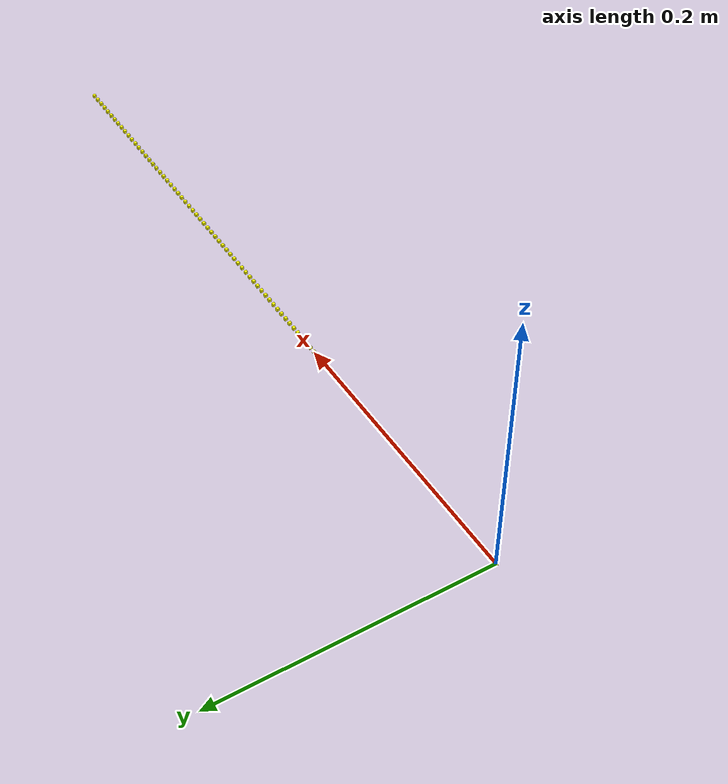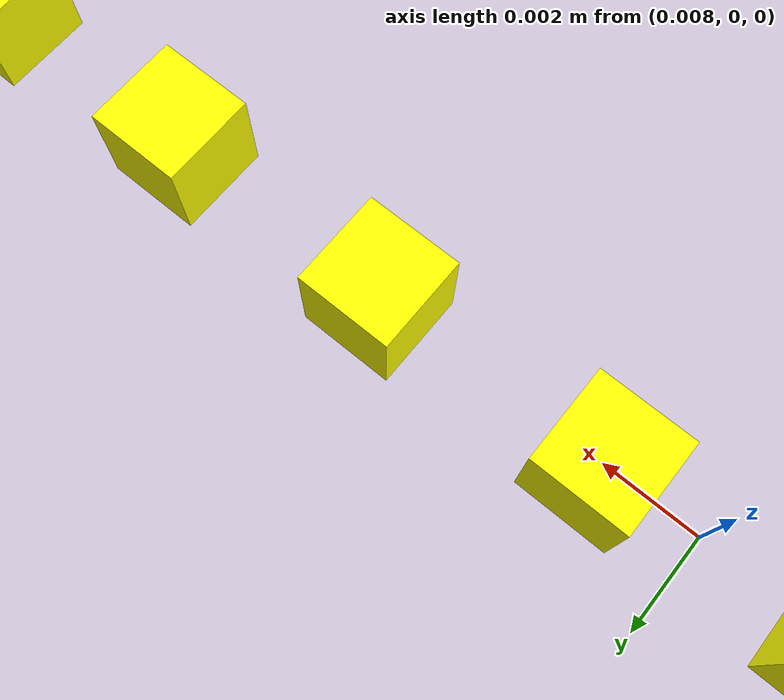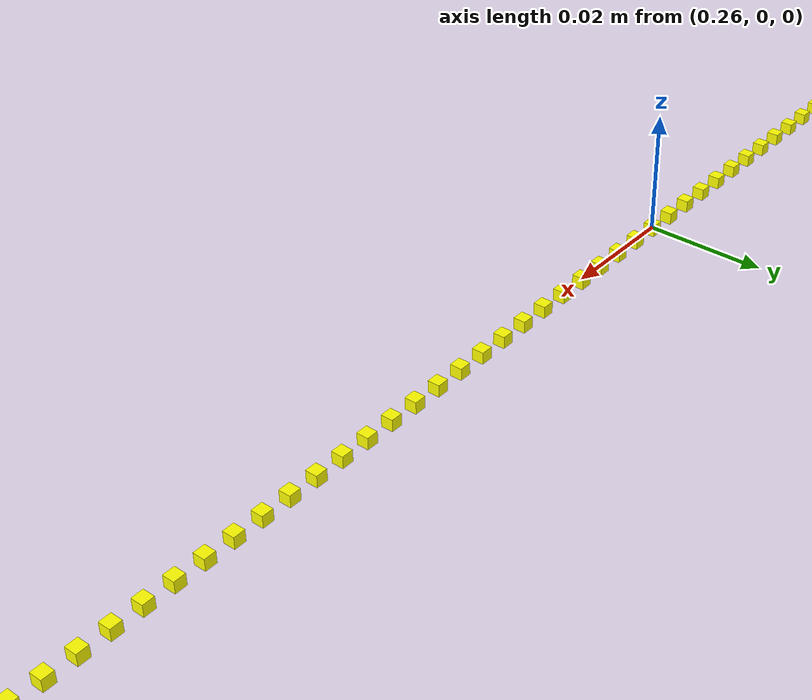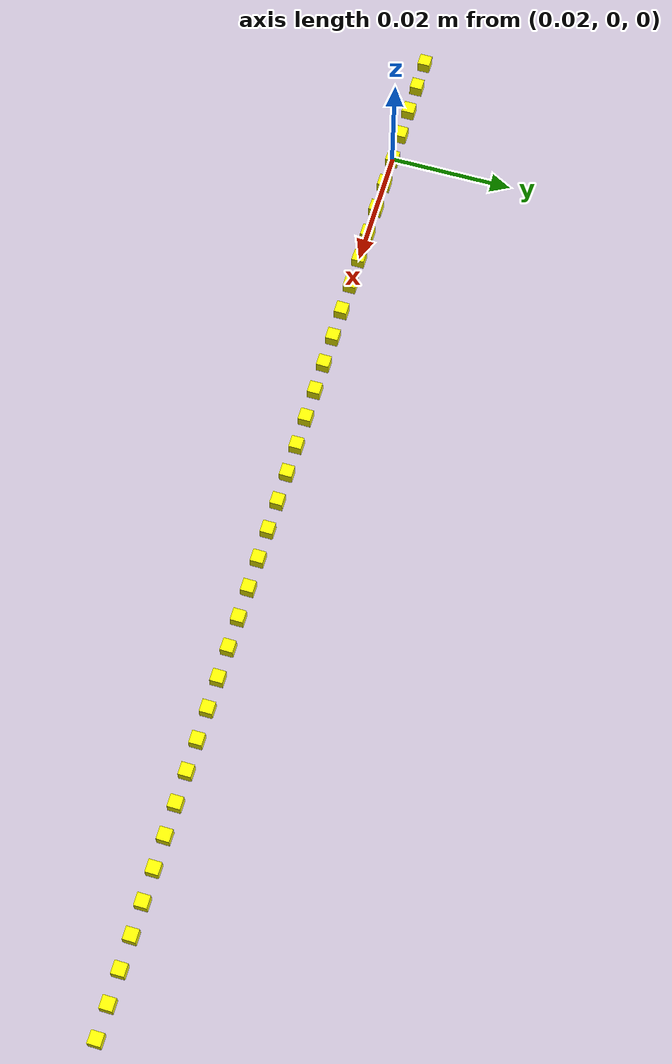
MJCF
<mujoco model="2D_UpperLimb">
  <compiler inertiafromgeom="auto" angle="radian" />
   <option timestep="0.0001" iterations="50" solver="PGS" integrator="Euler" gravity="0 0 0" collision="predefined">
     <flag energy="enable" />
   </option>
   <asset>
     <texture type="skybox" builtin="flat" rgb1="1 1 1" rgb2="1 1 1" width="100" height="100" />
      <material name="JointColor" rgba="1.0 1.0 0.0 1" />
      <material name="LimbColor" rgba="0.7 0.7 0.7 1" />
   </asset>
   <worldbody>
     <body name="cameramover" mocap="true" pos="0 0 0">
        <camera name="mycamera" pos="0.0 2.0 2.0" euler="1.5707 0 0" />
      </body>
      <body name="root" pos="0 0 0" euler="0 0 0">
        <joint ref="0" type="slide" name="sender" stiffness="1000" pos=" 0.0000 0 0" axis="1 0 0" />
         <geom type="box" name="mass1" mass="0.1" pos=" 0.0000 0 0" material="JointColor" size=" 0.0010 0.0010 0.0010" />
         <body name="node2" euler="0 0 0" pos=" 0.0050 0 0">
           <joint ref="0" type="slide" name="spring2" stiffness="1000" pos=" 0.0000 0 0" axis="1 0 0" />
            <geom type="box" name="mass2" mass="0.1" pos=" 0.0000 0 0" material="JointColor" size=" 0.0010 0.0010 0.0010" />
            <body name="node3" euler="0 0 0" pos=" 0.0050 0 0">
              <joint ref="0" type="slide" name="spring3" stiffness="1000" pos=" 0.0000 0 0" axis="1 0 0" />
               <geom type="box" name="mass3" mass="0.1" pos=" 0.0000 0 0" material="JointColor" size=" 0.0010 0.0010 0.0010" />
               <body name="node4" euler="0 0 0" pos=" 0.0050 0 0">
                 <joint ref="0" type="slide" name="spring4" stiffness="1000" pos=" 0.0000 0 0" axis="1 0 0" />
                  <geom type="box" name="mass4" mass="0.1" pos=" 0.0000 0 0" material="JointColor" size=" 0.0010 0.0010 0.0010" />
                  <body name="node5" euler="0 0 0" pos=" 0.0050 0 0">
                    <joint ref="0" type="slide" name="spring5" stiffness="1000" pos=" 0.0000 0 0" axis="1 0 0" />
                     <geom type="box" name="mass5" mass="0.1" pos=" 0.0000 0 0" material="JointColor" size=" 0.0010 0.0010 0.0010" />
                     <body name="node6" euler="0 0 0" pos=" 0.0050 0 0">
                       <joint ref="0" type="slide" name="spring6" stiffness="1000" pos=" 0.0000 0 0" axis="1 0 0" />
                        <geom type="box" name="mass6" mass="0.1" pos=" 0.0000 0 0" material="JointColor" size=" 0.0010 0.0010 0.0010" />
                        <body name="node7" euler="0 0 0" pos=" 0.0050 0 0">
                          <joint ref="0" type="slide" name="spring7" stiffness="1000" pos=" 0.0000 0 0" axis="1 0 0" />
                           <geom type="box" name="mass7" mass="0.1" pos=" 0.0000 0 0" material="JointColor" size=" 0.0010 0.0010 0.0010" />
                           <body name="node8" euler="0 0 0" pos=" 0.0050 0 0">
                             <joint ref="0" type="slide" name="spring8" stiffness="1000" pos=" 0.0000 0 0" axis="1 0 0" />
                              <geom type="box" name="mass8" mass="0.1" pos=" 0.0000 0 0" material="JointColor" size=" 0.0010 0.0010 0.0010" />
                              <body name="node9" euler="0 0 0" pos=" 0.0050 0 0">
                                <joint ref="0" type="slide" name="spring9" stiffness="1000" pos=" 0.0000 0 0" axis="1 0 0" />
                                 <geom type="box" name="mass9" mass="0.1" pos=" 0.0000 0 0" material="JointColor" size=" 0.0010 0.0010 0.0010" />
                                 <body name="node10" euler="0 0 0" pos=" 0.0050 0 0">
                                   <joint ref="0" type="slide" name="spring10" stiffness="1000" pos=" 0.0000 0 0" axis="1 0 0" />
                                    <geom type="box" name="mass10" mass="0.1" pos=" 0.0000 0 0" material="JointColor" size=" 0.0010 0.0010 0.0010" />
                                    <body name="node11" euler="0 0 0" pos=" 0.0050 0 0">
                                      <joint ref="0" type="slide" name="spring11" stiffness="1000" pos=" 0.0000 0 0" axis="1 0 0" />
                                       <geom type="box" name="mass11" mass="0.1" pos=" 0.0000 0 0" material="JointColor" size=" 0.0010 0.0010 0.0010" />
                                       <body name="node12" euler="0 0 0" pos=" 0.0050 0 0">
                                         <joint ref="0" type="slide" name="spring12" stiffness="1000" pos=" 0.0000 0 0" axis="1 0 0" />
                                          <geom type="box" name="mass12" mass="0.1" pos=" 0.0000 0 0" material="JointColor" size=" 0.0010 0.0010 0.0010" />
                                          <body name="node13" euler="0 0 0" pos=" 0.0050 0 0">
                                            <joint ref="0" type="slide" name="spring13" stiffness="1000" pos=" 0.0000 0 0" axis="1 0 0" />
                                             <geom type="box" name="mass13" mass="0.1" pos=" 0.0000 0 0" material="JointColor" size=" 0.0010 0.0010 0.0010" />
                                             <body name="node14" euler="0 0 0" pos=" 0.0050 0 0">
                                               <joint ref="0" type="slide" name="spring14" stiffness="1000" pos=" 0.0000 0 0" axis="1 0 0" />
                                                <geom type="box" name="mass14" mass="0.1" pos=" 0.0000 0 0" material="JointColor" size=" 0.0010 0.0010 0.0010" />
                                                <body name="node15" euler="0 0 0" pos=" 0.0050 0 0">
                                                  <joint ref="0" type="slide" name="spring15" stiffness="1000" pos=" 0.0000 0 0" axis="1 0 0" />
                                                   <geom type="box" name="mass15" mass="0.1" pos=" 0.0000 0 0" material="JointColor" size=" 0.0010 0.0010 0.0010" />
                                                   <body name="node16" euler="0 0 0" pos=" 0.0050 0 0">
                                                     <joint ref="0" type="slide" name="spring16" stiffness="1000" pos=" 0.0000 0 0" axis="1 0 0" />
                                                      <geom type="box" name="mass16" mass="0.1" pos=" 0.0000 0 0" material="JointColor" size=" 0.0010 0.0010 0.0010" />
                                                      <body name="node17" euler="0 0 0" pos=" 0.0050 0 0">
                                                        <joint ref="0" type="slide" name="spring17" stiffness="1000" pos=" 0.0000 0 0" axis="1 0 0" />
                                                         <geom type="box" name="mass17" mass="0.1" pos=" 0.0000 0 0" material="JointColor" size=" 0.0010 0.0010 0.0010" />
                                                         <body name="node18" euler="0 0 0" pos=" 0.0050 0 0">
                                                           <joint ref="0" type="slide" name="spring18" stiffness="1000" pos=" 0.0000 0 0" axis="1 0 0" />
                                                            <geom type="box" name="mass18" mass="0.1" pos=" 0.0000 0 0" material="JointColor" size=" 0.0010 0.0010 0.0010" />
                                                            <body name="node19" euler="0 0 0" pos=" 0.0050 0 0">
                                                              <joint ref="0" type="slide" name="spring19" stiffness="1000" pos=" 0.0000 0 0" axis="1 0 0" />
                                                               <geom type="box" name="mass19" mass="0.1" pos=" 0.0000 0 0" material="JointColor" size=" 0.0010 0.0010 0.0010" />
                                                               <body name="node20" euler="0 0 0" pos=" 0.0050 0 0">
                                                                 <joint ref="0" type="slide" name="spring20" stiffness="1000" pos=" 0.0000 0 0" axis="1 0 0" />
                                                                  <geom type="box" name="mass20" mass="0.1" pos=" 0.0000 0 0" material="JointColor" size=" 0.0010 0.0010 0.0010" />
                                                                  <body name="node21" euler="0 0 0" pos=" 0.0050 0 0">
                                                                    <joint ref="0" type="slide" name="spring21" stiffness="1000" pos=" 0.0000 0 0" axis="1 0 0" />
                                                                     <geom type="box" name="mass21" mass="0.1" pos=" 0.0000 0 0" material="JointColor" size=" 0.0010 0.0010 0.0010" />
                                                                     <body name="node22" euler="0 0 0" pos=" 0.0050 0 0">
                                                                       <joint ref="0" type="slide" name="spring22" stiffness="1000" pos=" 0.0000 0 0" axis="1 0 0" />
                                                                        <geom type="box" name="mass22" mass="0.1" pos=" 0.0000 0 0" material="JointColor" size=" 0.0010 0.0010 0.0010" />
                                                                        <body name="node23" euler="0 0 0" pos=" 0.0050 0 0">
                                                                          <joint ref="0" type="slide" name="spring23" stiffness="1000" pos=" 0.0000 0 0" axis="1 0 0" />
                                                                           <geom type="box" name="mass23" mass="0.1" pos=" 0.0000 0 0" material="JointColor" size=" 0.0010 0.0010 0.0010" />
                                                                           <body name="node24" euler="0 0 0" pos=" 0.0050 0 0">
                                                                             <joint ref="0" type="slide" name="spring24" stiffness="1000" pos=" 0.0000 0 0" axis="1 0 0" />
                                                                              <geom type="box" name="mass24" mass="0.1" pos=" 0.0000 0 0" material="JointColor" size=" 0.0010 0.0010 0.0010" />
                                                                              <body name="node25" euler="0 0 0" pos=" 0.0050 0 0">
                                                                                <joint ref="0" type="slide" name="spring25" stiffness="1000" pos=" 0.0000 0 0" axis="1 0 0" />
                                                                                 <geom type="box" name="mass25" mass="0.1" pos=" 0.0000 0 0" material="JointColor" size=" 0.0010 0.0010 0.0010" />
                                                                                 <body name="node26" euler="0 0 0" pos=" 0.0050 0 0">
                                                                                   <joint ref="0" type="slide" name="spring26" stiffness="1000" pos=" 0.0000 0 0" axis="1 0 0" />
                                                                                    <geom type="box" name="mass26" mass="0.1" pos=" 0.0000 0 0" material="JointColor" size=" 0.0010 0.0010 0.0010" />
                                                                                    <body name="node27" euler="0 0 0" pos=" 0.0050 0 0">
                                                                                      <joint ref="0" type="slide" name="spring27" stiffness="1000" pos=" 0.0000 0 0" axis="1 0 0" />
                                                                                       <geom type="box" name="mass27" mass="0.1" pos=" 0.0000 0 0" material="JointColor" size=" 0.0010 0.0010 0.0010" />
                                                                                       <body name="node28" euler="0 0 0" pos=" 0.0050 0 0">
                                                                                         <joint ref="0" type="slide" name="spring28" stiffness="1000" pos=" 0.0000 0 0" axis="1 0 0" />
                                                                                          <geom type="box" name="mass28" mass="0.1" pos=" 0.0000 0 0" material="JointColor" size=" 0.0010 0.0010 0.0010" />
                                                                                          <body name="node29" euler="0 0 0" pos=" 0.0050 0 0">
                                                                                            <joint ref="0" type="slide" name="spring29" stiffness="1000" pos=" 0.0000 0 0" axis="1 0 0" />
                                                                                             <geom type="box" name="mass29" mass="0.1" pos=" 0.0000 0 0" material="JointColor" size=" 0.0010 0.0010 0.0010" />
                                                                                             <body name="node30" euler="0 0 0" pos=" 0.0050 0 0">
                                                                                               <joint ref="0" type="slide" name="spring30" stiffness="1000" pos=" 0.0000 0 0" axis="1 0 0" />
                                                                                                <geom type="box" name="mass30" mass="0.1" pos=" 0.0000 0 0" material="JointColor" size=" 0.0010 0.0010 0.0010" />
                                                                                                <body name="node31" euler="0 0 0" pos=" 0.0050 0 0">
                                                                                                  <joint ref="0" type="slide" name="spring31" stiffness="1000" pos=" 0.0000 0 0" axis="1 0 0" />
                                                                                                   <geom type="box" name="mass31" mass="0.1" pos=" 0.0000 0 0" material="JointColor" size=" 0.0010 0.0010 0.0010" />
                                                                                                   <body name="node32" euler="0 0 0" pos=" 0.0050 0 0">
                                                                                                     <joint ref="0" type="slide" name="spring32" stiffness="1000" pos=" 0.0000 0 0" axis="1 0 0" />
                                                                                                      <geom type="box" name="mass32" mass="0.1" pos=" 0.0000 0 0" material="JointColor" size=" 0.0010 0.0010 0.0010" />
                                                                                                      <body name="node33" euler="0 0 0" pos=" 0.0050 0 0">
                                                                                                        <joint ref="0" type="slide" name="spring33" stiffness="1000" pos=" 0.0000 0 0" axis="1 0 0" />
                                                                                                         <geom type="box" name="mass33" mass="0.1" pos=" 0.0000 0 0" material="JointColor" size=" 0.0010 0.0010 0.0010" />
                                                                                                         <body name="node34" euler="0 0 0" pos=" 0.0050 0 0">
                                                                                                           <joint ref="0" type="slide" name="spring34" stiffness="1000" pos=" 0.0000 0 0" axis="1 0 0" />
                                                                                                            <geom type="box" name="mass34" mass="0.1" pos=" 0.0000 0 0" material="JointColor" size=" 0.0010 0.0010 0.0010" />
                                                                                                            <body name="node35" euler="0 0 0" pos=" 0.0050 0 0">
                                                                                                              <joint ref="0" type="slide" name="spring35" stiffness="1000" pos=" 0.0000 0 0" axis="1 0 0" />
                                                                                                               <geom type="box" name="mass35" mass="0.1" pos=" 0.0000 0 0" material="JointColor" size=" 0.0010 0.0010 0.0010" />
                                                                                                               <body name="node36" euler="0 0 0" pos=" 0.0050 0 0">
                                                                                                                 <joint ref="0" type="slide" name="spring36" stiffness="1000" pos=" 0.0000 0 0" axis="1 0 0" />
                                                                                                                  <geom type="box" name="mass36" mass="0.1" pos=" 0.0000 0 0" material="JointColor" size=" 0.0010 0.0010 0.0010" />
                                                                                                                  <body name="node37" euler="0 0 0" pos=" 0.0050 0 0">
                                                                                                                    <joint ref="0" type="slide" name="spring37" stiffness="1000" pos=" 0.0000 0 0" axis="1 0 0" />
                                                                                                                     <geom type="box" name="mass37" mass="0.1" pos=" 0.0000 0 0" material="JointColor" size=" 0.0010 0.0010 0.0010" />
                                                                                                                     <body name="node38" euler="0 0 0" pos=" 0.0050 0 0">
                                                                                                                       <joint ref="0" type="slide" name="spring38" stiffness="1000" pos=" 0.0000 0 0" axis="1 0 0" />
                                                                                                                        <geom type="box" name="mass38" mass="0.1" pos=" 0.0000 0 0" material="JointColor" size=" 0.0010 0.0010 0.0010" />
                                                                                                                        <body name="node39" euler="0 0 0" pos=" 0.0050 0 0">
                                                                                                                          <joint ref="0" type="slide" name="spring39" stiffness="1000" pos=" 0.0000 0 0" axis="1 0 0" />
                                                                                                                           <geom type="box" name="mass39" mass="0.1" pos=" 0.0000 0 0" material="JointColor" size=" 0.0010 0.0010 0.0010" />
                                                                                                                           <body name="node40" euler="0 0 0" pos=" 0.0050 0 0">
                                                                                                                             <joint ref="0" type="slide" name="spring40" stiffness="1000" pos=" 0.0000 0 0" axis="1 0 0" />
                                                                                                                              <geom type="box" name="mass40" mass="0.1" pos=" 0.0000 0 0" material="JointColor" size=" 0.0010 0.0010 0.0010" />
                                                                                                                              <body name="node41" euler="0 0 0" pos=" 0.0050 0 0">
                                                                                                                                <joint ref="0" type="slide" name="spring41" stiffness="1000" pos=" 0.0000 0 0" axis="1 0 0" />
                                                                                                                                 <geom type="box" name="mass41" mass="0.1" pos=" 0.0000 0 0" material="JointColor" size=" 0.0010 0.0010 0.0010" />
                                                                                                                                 <body name="node42" euler="0 0 0" pos=" 0.0050 0 0">
                                                                                                                                   <joint ref="0" type="slide" name="spring42" stiffness="1000" pos=" 0.0000 0 0" axis="1 0 0" />
                                                                                                                                    <geom type="box" name="mass42" mass="0.1" pos=" 0.0000 0 0" material="JointColor" size=" 0.0010 0.0010 0.0010" />
                                                                                                                                    <body name="node43" euler="0 0 0" pos=" 0.0050 0 0">
                                                                                                                                      <joint ref="0" type="slide" name="spring43" stiffness="1000" pos=" 0.0000 0 0" axis="1 0 0" />
                                                                                                                                       <geom type="box" name="mass43" mass="0.1" pos=" 0.0000 0 0" material="JointColor" size=" 0.0010 0.0010 0.0010" />
                                                                                                                                       <body name="node44" euler="0 0 0" pos=" 0.0050 0 0">
                                                                                                                                         <joint ref="0" type="slide" name="spring44" stiffness="1000" pos=" 0.0000 0 0" axis="1 0 0" />
                                                                                                                                          <geom type="box" name="mass44" mass="0.1" pos=" 0.0000 0 0" material="JointColor" size=" 0.0010 0.0010 0.0010" />
                                                                                                                                          <body name="node45" euler="0 0 0" pos=" 0.0050 0 0">
                                                                                                                                            <joint ref="0" type="slide" name="spring45" stiffness="1000" pos=" 0.0000 0 0" axis="1 0 0" />
                                                                                                                                             <geom type="box" name="mass45" mass="0.1" pos=" 0.0000 0 0" material="JointColor" size=" 0.0010 0.0010 0.0010" />
                                                                                                                                             <body name="node46" euler="0 0 0" pos=" 0.0050 0 0">
                                                                                                                                               <joint ref="0" type="slide" name="spring46" stiffness="1000" pos=" 0.0000 0 0" axis="1 0 0" />
                                                                                                                                                <geom type="box" name="mass46" mass="0.1" pos=" 0.0000 0 0" material="JointColor" size=" 0.0010 0.0010 0.0010" />
                                                                                                                                                <body name="node47" euler="0 0 0" pos=" 0.0050 0 0">
                                                                                                                                                  <joint ref="0" type="slide" name="spring47" stiffness="1000" pos=" 0.0000 0 0" axis="1 0 0" />
                                                                                                                                                   <geom type="box" name="mass47" mass="0.1" pos=" 0.0000 0 0" material="JointColor" size=" 0.0010 0.0010 0.0010" />
                                                                                                                                                   <body name="node48" euler="0 0 0" pos=" 0.0050 0 0">
                                                                                                                                                     <joint ref="0" type="slide" name="spring48" stiffness="1000" pos=" 0.0000 0 0" axis="1 0 0" />
                                                                                                                                                      <geom type="box" name="mass48" mass="0.1" pos=" 0.0000 0 0" material="JointColor" size=" 0.0010 0.0010 0.0010" />
                                                                                                                                                      <body name="node49" euler="0 0 0" pos=" 0.0050 0 0">
                                                                                                                                                        <joint ref="0" type="slide" name="spring49" stiffness="1000" pos=" 0.0000 0 0" axis="1 0 0" />
                                                                                                                                                         <geom type="box" name="mass49" mass="0.1" pos=" 0.0000 0 0" material="JointColor" size=" 0.0010 0.0010 0.0010" />
                                                                                                                                                         <body name="node50" euler="0 0 0" pos=" 0.0050 0 0">
                                                                                                                                                           <joint ref="0" type="slide" name="spring50" stiffness="1000" pos=" 0.0000 0 0" axis="1 0 0" />
                                                                                                                                                            <geom type="box" name="mass50" mass="0.1" pos=" 0.0000 0 0" material="JointColor" size=" 0.0010 0.0010 0.0010" />
                                                                                                                                                            <body name="node51" euler="0 0 0" pos=" 0.0050 0 0">
                                                                                                                                                              <joint ref="0" type="slide" name="spring51" stiffness="1000" pos=" 0.0000 0 0" axis="1 0 0" />
                                                                                                                                                               <geom type="box" name="mass51" mass="0.1" pos=" 0.0000 0 0" material="JointColor" size=" 0.0010 0.0010 0.0010" />
                                                                                                                                                               <body name="node52" euler="0 0 0" pos=" 0.0050 0 0">
                                                                                                                                                                 <joint ref="0" type="slide" name="spring52" stiffness="1000" pos=" 0.0000 0 0" axis="1 0 0" />
                                                                                                                                                                  <geom type="box" name="mass52" mass="0.1" pos=" 0.0000 0 0" material="JointColor" size=" 0.0010 0.0010 0.0010" />
                                                                                                                                                                  <body name="node53" euler="0 0 0" pos=" 0.0050 0 0">
                                                                                                                                                                    <joint ref="0" type="slide" name="spring53" stiffness="1000" pos=" 0.0000 0 0" axis="1 0 0" />
                                                                                                                                                                     <geom type="box" name="mass53" mass="0.1" pos=" 0.0000 0 0" material="JointColor" size=" 0.0010 0.0010 0.0010" />
                                                                                                                                                                     <body name="node54" euler="0 0 0" pos=" 0.0050 0 0">
                                                                                                                                                                       <joint ref="0" type="slide" name="spring54" stiffness="1000" pos=" 0.0000 0 0" axis="1 0 0" />
                                                                                                                                                                        <geom type="box" name="mass54" mass="0.1" pos=" 0.0000 0 0" material="JointColor" size=" 0.0010 0.0010 0.0010" />
                                                                                                                                                                        <body name="node55" euler="0 0 0" pos=" 0.0050 0 0">
                                                                                                                                                                          <joint ref="0" type="slide" name="spring55" stiffness="1000" pos=" 0.0000 0 0" axis="1 0 0" />
                                                                                                                                                                           <geom type="box" name="mass55" mass="0.1" pos=" 0.0000 0 0" material="JointColor" size=" 0.0010 0.0010 0.0010" />
                                                                                                                                                                           <body name="node56" euler="0 0 0" pos=" 0.0050 0 0">
                                                                                                                                                                             <joint ref="0" type="slide" name="spring56" stiffness="1000" pos=" 0.0000 0 0" axis="1 0 0" />
                                                                                                                                                                              <geom type="box" name="mass56" mass="0.1" pos=" 0.0000 0 0" material="JointColor" size=" 0.0010 0.0010 0.0010" />
                                                                                                                                                                              <body name="node57" euler="0 0 0" pos=" 0.0050 0 0">
                                                                                                                                                                                <joint ref="0" type="slide" name="spring57" stiffness="1000" pos=" 0.0000 0 0" axis="1 0 0" />
                                                                                                                                                                                 <geom type="box" name="mass57" mass="0.1" pos=" 0.0000 0 0" material="JointColor" size=" 0.0010 0.0010 0.0010" />
                                                                                                                                                                                 <body name="node58" euler="0 0 0" pos=" 0.0050 0 0">
                                                                                                                                                                                   <joint ref="0" type="slide" name="spring58" stiffness="1000" pos=" 0.0000 0 0" axis="1 0 0" />
                                                                                                                                                                                    <geom type="box" name="mass58" mass="0.1" pos=" 0.0000 0 0" material="JointColor" size=" 0.0010 0.0010 0.0010" />
                                                                                                                                                                                    <body name="node59" euler="0 0 0" pos=" 0.0050 0 0">
                                                                                                                                                                                      <joint ref="0" type="slide" name="spring59" stiffness="1000" pos=" 0.0000 0 0" axis="1 0 0" />
                                                                                                                                                                                       <geom type="box" name="mass59" mass="0.1" pos=" 0.0000 0 0" material="JointColor" size=" 0.0010 0.0010 0.0010" />
                                                                                                                                                                                       <body name="node60" euler="0 0 0" pos=" 0.0050 0 0">
                                                                                                                                                                                         <joint ref="0" type="slide" name="spring60" stiffness="1000" pos=" 0.0000 0 0" axis="1 0 0" />
                                                                                                                                                                                          <geom type="box" name="mass60" mass="0.1" pos=" 0.0000 0 0" material="JointColor" size=" 0.0010 0.0010 0.0010" />
                                                                                                                                                                                          <body name="node61" euler="0 0 0" pos=" 0.0050 0 0">
                                                                                                                                                                                            <joint ref="0" type="slide" name="spring61" stiffness="1000" pos=" 0.0000 0 0" axis="1 0 0" />
                                                                                                                                                                                             <geom type="box" name="mass61" mass="0.1" pos=" 0.0000 0 0" material="JointColor" size=" 0.0010 0.0010 0.0010" />
                                                                                                                                                                                             <body name="node62" euler="0 0 0" pos=" 0.0050 0 0">
                                                                                                                                                                                               <joint ref="0" type="slide" name="spring62" stiffness="1000" pos=" 0.0000 0 0" axis="1 0 0" />
                                                                                                                                                                                                <geom type="box" name="mass62" mass="0.1" pos=" 0.0000 0 0" material="JointColor" size=" 0.0010 0.0010 0.0010" />
                                                                                                                                                                                                <body name="node63" euler="0 0 0" pos=" 0.0050 0 0">
                                                                                                                                                                                                  <joint ref="0" type="slide" name="spring63" stiffness="1000" pos=" 0.0000 0 0" axis="1 0 0" />
                                                                                                                                                                                                   <geom type="box" name="mass63" mass="0.1" pos=" 0.0000 0 0" material="JointColor" size=" 0.0010 0.0010 0.0010" />
                                                                                                                                                                                                   <body name="node64" euler="0 0 0" pos=" 0.0050 0 0">
                                                                                                                                                                                                     <joint ref="0" type="slide" name="spring64" stiffness="1000" pos=" 0.0000 0 0" axis="1 0 0" />
                                                                                                                                                                                                      <geom type="box" name="mass64" mass="0.1" pos=" 0.0000 0 0" material="JointColor" size=" 0.0010 0.0010 0.0010" />
                                                                                                                                                                                                      <body name="node65" euler="0 0 0" pos=" 0.0050 0 0">
                                                                                                                                                                                                        <joint ref="0" type="slide" name="spring65" stiffness="1000" pos=" 0.0000 0 0" axis="1 0 0" />
                                                                                                                                                                                                         <geom type="box" name="mass65" mass="0.1" pos=" 0.0000 0 0" material="JointColor" size=" 0.0010 0.0010 0.0010" />
                                                                                                                                                                                                         <body name="node66" euler="0 0 0" pos=" 0.0050 0 0">
                                                                                                                                                                                                           <joint ref="0" type="slide" name="spring66" stiffness="1000" pos=" 0.0000 0 0" axis="1 0 0" />
                                                                                                                                                                                                            <geom type="box" name="mass66" mass="0.1" pos=" 0.0000 0 0" material="JointColor" size=" 0.0010 0.0010 0.0010" />
                                                                                                                                                                                                            <body name="node67" euler="0 0 0" pos=" 0.0050 0 0">
                                                                                                                                                                                                              <joint ref="0" type="slide" name="spring67" stiffness="1000" pos=" 0.0000 0 0" axis="1 0 0" />
                                                                                                                                                                                                               <geom type="box" name="mass67" mass="0.1" pos=" 0.0000 0 0" material="JointColor" size=" 0.0010 0.0010 0.0010" />
                                                                                                                                                                                                               <body name="node68" euler="0 0 0" pos=" 0.0050 0 0">
                                                                                                                                                                                                                 <joint ref="0" type="slide" name="spring68" stiffness="1000" pos=" 0.0000 0 0" axis="1 0 0" />
                                                                                                                                                                                                                  <geom type="box" name="mass68" mass="0.1" pos=" 0.0000 0 0" material="JointColor" size=" 0.0010 0.0010 0.0010" />
                                                                                                                                                                                                                  <body name="node69" euler="0 0 0" pos=" 0.0050 0 0">
                                                                                                                                                                                                                    <joint ref="0" type="slide" name="spring69" stiffness="1000" pos=" 0.0000 0 0" axis="1 0 0" />
                                                                                                                                                                                                                     <geom type="box" name="mass69" mass="0.1" pos=" 0.0000 0 0" material="JointColor" size=" 0.0010 0.0010 0.0010" />
                                                                                                                                                                                                                     <body name="node70" euler="0 0 0" pos=" 0.0050 0 0">
                                                                                                                                                                                                                       <joint ref="0" type="slide" name="spring70" stiffness="1000" pos=" 0.0000 0 0" axis="1 0 0" />
                                                                                                                                                                                                                        <geom type="box" name="mass70" mass="0.1" pos=" 0.0000 0 0" material="JointColor" size=" 0.0010 0.0010 0.0010" />
                                                                                                                                                                                                                        <body name="node71" euler="0 0 0" pos=" 0.0050 0 0">
                                                                                                                                                                                                                          <joint ref="0" type="slide" name="spring71" stiffness="1000" pos=" 0.0000 0 0" axis="1 0 0" />
                                                                                                                                                                                                                           <geom type="box" name="mass71" mass="0.1" pos=" 0.0000 0 0" material="JointColor" size=" 0.0010 0.0010 0.0010" />
                                                                                                                                                                                                                           <body name="node72" euler="0 0 0" pos=" 0.0050 0 0">
                                                                                                                                                                                                                             <joint ref="0" type="slide" name="spring72" stiffness="1000" pos=" 0.0000 0 0" axis="1 0 0" />
                                                                                                                                                                                                                              <geom type="box" name="mass72" mass="0.1" pos=" 0.0000 0 0" material="JointColor" size=" 0.0010 0.0010 0.0010" />
                                                                                                                                                                                                                              <body name="node73" euler="0 0 0" pos=" 0.0050 0 0">
                                                                                                                                                                                                                                <joint ref="0" type="slide" name="spring73" stiffness="1000" pos=" 0.0000 0 0" axis="1 0 0" />
                                                                                                                                                                                                                                 <geom type="box" name="mass73" mass="0.1" pos=" 0.0000 0 0" material="JointColor" size=" 0.0010 0.0010 0.0010" />
                                                                                                                                                                                                                                 <body name="node74" euler="0 0 0" pos=" 0.0050 0 0">
                                                                                                                                                                                                                                   <joint ref="0" type="slide" name="spring74" stiffness="1000" pos=" 0.0000 0 0" axis="1 0 0" />
                                                                                                                                                                                                                                    <geom type="box" name="mass74" mass="0.1" pos=" 0.0000 0 0" material="JointColor" size=" 0.0010 0.0010 0.0010" />
                                                                                                                                                                                                                                    <body name="node75" euler="0 0 0" pos=" 0.0050 0 0">
                                                                                                                                                                                                                                      <joint ref="0" type="slide" name="spring75" stiffness="1000" pos=" 0.0000 0 0" axis="1 0 0" />
                                                                                                                                                                                                                                       <geom type="box" name="mass75" mass="0.1" pos=" 0.0000 0 0" material="JointColor" size=" 0.0010 0.0010 0.0010" />
                                                                                                                                                                                                                                       <body name="node76" euler="0 0 0" pos=" 0.0050 0 0">
                                                                                                                                                                                                                                         <joint ref="0" type="slide" name="spring76" stiffness="1000" pos=" 0.0000 0 0" axis="1 0 0" />
                                                                                                                                                                                                                                          <geom type="box" name="mass76" mass="0.1" pos=" 0.0000 0 0" material="JointColor" size=" 0.0010 0.0010 0.0010" />
                                                                                                                                                                                                                                          <body name="node77" euler="0 0 0" pos=" 0.0050 0 0">
                                                                                                                                                                                                                                            <joint ref="0" type="slide" name="spring77" stiffness="1000" pos=" 0.0000 0 0" axis="1 0 0" />
                                                                                                                                                                                                                                             <geom type="box" name="mass77" mass="0.1" pos=" 0.0000 0 0" material="JointColor" size=" 0.0010 0.0010 0.0010" />
                                                                                                                                                                                                                                             <body name="node78" euler="0 0 0" pos=" 0.0050 0 0">
                                                                                                                                                                                                                                               <joint ref="0" type="slide" name="spring78" stiffness="1000" pos=" 0.0000 0 0" axis="1 0 0" />
                                                                                                                                                                                                                                                <geom type="box" name="mass78" mass="0.1" pos=" 0.0000 0 0" material="JointColor" size=" 0.0010 0.0010 0.0010" />
                                                                                                                                                                                                                                                <body name="node79" euler="0 0 0" pos=" 0.0050 0 0">
                                                                                                                                                                                                                                                  <joint ref="0" type="slide" name="spring79" stiffness="1000" pos=" 0.0000 0 0" axis="1 0 0" />
                                                                                                                                                                                                                                                   <geom type="box" name="mass79" mass="0.1" pos=" 0.0000 0 0" material="JointColor" size=" 0.0010 0.0010 0.0010" />
                                                                                                                                                                                                                                                   <body name="node80" euler="0 0 0" pos=" 0.0050 0 0">
                                                                                                                                                                                                                                                     <joint ref="0" type="slide" name="spring80" stiffness="1000" pos=" 0.0000 0 0" axis="1 0 0" />
                                                                                                                                                                                                                                                      <geom type="box" name="mass80" mass="0.1" pos=" 0.0000 0 0" material="JointColor" size=" 0.0010 0.0010 0.0010" />
                                                                                                                                                                                                                                                      <body name="node81" euler="0 0 0" pos=" 0.0050 0 0">
                                                                                                                                                                                                                                                        <joint ref="0" type="slide" name="spring81" stiffness="1000" pos=" 0.0000 0 0" axis="1 0 0" />
                                                                                                                                                                                                                                                         <geom type="box" name="mass81" mass="0.1" pos=" 0.0000 0 0" material="JointColor" size=" 0.0010 0.0010 0.0010" />
                                                                                                                                                                                                                                                         <body name="node82" euler="0 0 0" pos=" 0.0050 0 0">
                                                                                                                                                                                                                                                           <joint ref="0" type="slide" name="spring82" stiffness="1000" pos=" 0.0000 0 0" axis="1 0 0" />
                                                                                                                                                                                                                                                            <geom type="box" name="mass82" mass="0.1" pos=" 0.0000 0 0" material="JointColor" size=" 0.0010 0.0010 0.0010" />
                                                                                                                                                                                                                                                            <body name="node83" euler="0 0 0" pos=" 0.0050 0 0">
                                                                                                                                                                                                                                                              <joint ref="0" type="slide" name="spring83" stiffness="1000" pos=" 0.0000 0 0" axis="1 0 0" />
                                                                                                                                                                                                                                                               <geom type="box" name="mass83" mass="0.1" pos=" 0.0000 0 0" material="JointColor" size=" 0.0010 0.0010 0.0010" />
                                                                                                                                                                                                                                                               <body name="node84" euler="0 0 0" pos=" 0.0050 0 0">
                                                                                                                                                                                                                                                                 <joint ref="0" type="slide" name="spring84" stiffness="1000" pos=" 0.0000 0 0" axis="1 0 0" />
                                                                                                                                                                                                                                                                  <geom type="box" name="mass84" mass="0.1" pos=" 0.0000 0 0" material="JointColor" size=" 0.0010 0.0010 0.0010" />
                                                                                                                                                                                                                                                                  <body name="node85" euler="0 0 0" pos=" 0.0050 0 0">
                                                                                                                                                                                                                                                                    <joint ref="0" type="slide" name="spring85" stiffness="1000" pos=" 0.0000 0 0" axis="1 0 0" />
                                                                                                                                                                                                                                                                     <geom type="box" name="mass85" mass="0.1" pos=" 0.0000 0 0" material="JointColor" size=" 0.0010 0.0010 0.0010" />
                                                                                                                                                                                                                                                                     <body name="node86" euler="0 0 0" pos=" 0.0050 0 0">
                                                                                                                                                                                                                                                                       <joint ref="0" type="slide" name="spring86" stiffness="1000" pos=" 0.0000 0 0" axis="1 0 0" />
                                                                                                                                                                                                                                                                        <geom type="box" name="mass86" mass="0.1" pos=" 0.0000 0 0" material="JointColor" size=" 0.0010 0.0010 0.0010" />
                                                                                                                                                                                                                                                                        <body name="node87" euler="0 0 0" pos=" 0.0050 0 0">
                                                                                                                                                                                                                                                                          <joint ref="0" type="slide" name="spring87" stiffness="1000" pos=" 0.0000 0 0" axis="1 0 0" />
                                                                                                                                                                                                                                                                           <geom type="box" name="mass87" mass="0.1" pos=" 0.0000 0 0" material="JointColor" size=" 0.0010 0.0010 0.0010" />
                                                                                                                                                                                                                                                                           <body name="node88" euler="0 0 0" pos=" 0.0050 0 0">
                                                                                                                                                                                                                                                                             <joint ref="0" type="slide" name="spring88" stiffness="1000" pos=" 0.0000 0 0" axis="1 0 0" />
                                                                                                                                                                                                                                                                              <geom type="box" name="mass88" mass="0.1" pos=" 0.0000 0 0" material="JointColor" size=" 0.0010 0.0010 0.0010" />
                                                                                                                                                                                                                                                                              <body name="node89" euler="0 0 0" pos=" 0.0050 0 0">
                                                                                                                                                                                                                                                                                <joint ref="0" type="slide" name="spring89" stiffness="1000" pos=" 0.0000 0 0" axis="1 0 0" />
                                                                                                                                                                                                                                                                                 <geom type="box" name="mass89" mass="0.1" pos=" 0.0000 0 0" material="JointColor" size=" 0.0010 0.0010 0.0010" />
                                                                                                                                                                                                                                                                                 <body name="node90" euler="0 0 0" pos=" 0.0050 0 0">
                                                                                                                                                                                                                                                                                   <joint ref="0" type="slide" name="spring90" stiffness="1000" pos=" 0.0000 0 0" axis="1 0 0" />
                                                                                                                                                                                                                                                                                    <geom type="box" name="mass90" mass="0.1" pos=" 0.0000 0 0" material="JointColor" size=" 0.0010 0.0010 0.0010" />
                                                                                                                                                                                                                                                                                    <body name="node91" euler="0 0 0" pos=" 0.0050 0 0">
                                                                                                                                                                                                                                                                                      <joint ref="0" type="slide" name="spring91" stiffness="1000" pos=" 0.0000 0 0" axis="1 0 0" />
                                                                                                                                                                                                                                                                                       <geom type="box" name="mass91" mass="0.1" pos=" 0.0000 0 0" material="JointColor" size=" 0.0010 0.0010 0.0010" />
                                                                                                                                                                                                                                                                                       <body name="node92" euler="0 0 0" pos=" 0.0050 0 0">
                                                                                                                                                                                                                                                                                         <joint ref="0" type="slide" name="spring92" stiffness="1000" pos=" 0.0000 0 0" axis="1 0 0" />
                                                                                                                                                                                                                                                                                          <geom type="box" name="mass92" mass="0.1" pos=" 0.0000 0 0" material="JointColor" size=" 0.0010 0.0010 0.0010" />
                                                                                                                                                                                                                                                                                          <body name="node93" euler="0 0 0" pos=" 0.0050 0 0">
                                                                                                                                                                                                                                                                                            <joint ref="0" type="slide" name="spring93" stiffness="1000" pos=" 0.0000 0 0" axis="1 0 0" />
                                                                                                                                                                                                                                                                                             <geom type="box" name="mass93" mass="0.1" pos=" 0.0000 0 0" material="JointColor" size=" 0.0010 0.0010 0.0010" />
                                                                                                                                                                                                                                                                                             <body name="node94" euler="0 0 0" pos=" 0.0050 0 0">
                                                                                                                                                                                                                                                                                               <joint ref="0" type="slide" name="spring94" stiffness="1000" pos=" 0.0000 0 0" axis="1 0 0" />
                                                                                                                                                                                                                                                                                                <geom type="box" name="mass94" mass="0.1" pos=" 0.0000 0 0" material="JointColor" size=" 0.0010 0.0010 0.0010" />
                                                                                                                                                                                                                                                                                                <body name="node95" euler="0 0 0" pos=" 0.0050 0 0">
                                                                                                                                                                                                                                                                                                  <joint ref="0" type="slide" name="spring95" stiffness="1000" pos=" 0.0000 0 0" axis="1 0 0" />
                                                                                                                                                                                                                                                                                                   <geom type="box" name="mass95" mass="0.1" pos=" 0.0000 0 0" material="JointColor" size=" 0.0010 0.0010 0.0010" />
                                                                                                                                                                                                                                                                                                   <body name="node96" euler="0 0 0" pos=" 0.0050 0 0">
                                                                                                                                                                                                                                                                                                     <joint ref="0" type="slide" name="spring96" stiffness="1000" pos=" 0.0000 0 0" axis="1 0 0" />
                                                                                                                                                                                                                                                                                                      <geom type="box" name="mass96" mass="0.1" pos=" 0.0000 0 0" material="JointColor" size=" 0.0010 0.0010 0.0010" />
                                                                                                                                                                                                                                                                                                      <body name="node97" euler="0 0 0" pos=" 0.0050 0 0">
                                                                                                                                                                                                                                                                                                        <joint ref="0" type="slide" name="spring97" stiffness="1000" pos=" 0.0000 0 0" axis="1 0 0" />
                                                                                                                                                                                                                                                                                                         <geom type="box" name="mass97" mass="0.1" pos=" 0.0000 0 0" material="JointColor" size=" 0.0010 0.0010 0.0010" />
                                                                                                                                                                                                                                                                                                         <body name="node98" euler="0 0 0" pos=" 0.0050 0 0">
                                                                                                                                                                                                                                                                                                           <joint ref="0" type="slide" name="spring98" stiffness="1000" pos=" 0.0000 0 0" axis="1 0 0" />
                                                                                                                                                                                                                                                                                                            <geom type="box" name="mass98" mass="0.1" pos=" 0.0000 0 0" material="JointColor" size=" 0.0010 0.0010 0.0010" />
                                                                                                                                                                                                                                                                                                            <body name="node99" euler="0 0 0" pos=" 0.0050 0 0">
                                                                                                                                                                                                                                                                                                              <joint ref="0" type="slide" name="spring99" stiffness="1000" pos=" 0.0000 0 0" axis="1 0 0" />
                                                                                                                                                                                                                                                                                                               <geom type="box" name="mass99" mass="0.1" pos=" 0.0000 0 0" material="JointColor" size=" 0.0010 0.0010 0.0010" />
                                                                                                                                                                                                                                                                                                               <body name="node100" euler="0 0 0" pos=" 0.0050 0 0">
                                                                                                                                                                                                                                                                                                                 <joint ref="0" type="slide" name="spring100" stiffness="1000" pos=" 0.0000 0 0" axis="1 0 0" />
                                                                                                                                                                                                                                                                                                                  <geom type="box" name="tip" mass="0.1" pos=" 0.0000 0 0" material="JointColor" size=" 0.0010 0.0010 0.0010" />
                                                                                                                                                                                                                                                                                                               </body>
                                                                                                                                                                                                                                                                                                            </body>
                                                                                                                                                                                                                                                                                                         </body>
                                                                                                                                                                                                                                                                                                      </body>
                                                                                                                                                                                                                                                                                                   </body>
                                                                                                                                                                                                                                                                                                </body>
                                                                                                                                                                                                                                                                                             </body>
                                                                                                                                                                                                                                                                                          </body>
                                                                                                                                                                                                                                                                                       </body>
                                                                                                                                                                                                                                                                                    </body>
                                                                                                                                                                                                                                                                                 </body>
                                                                                                                                                                                                                                                                              </body>
                                                                                                                                                                                                                                                                           </body>
                                                                                                                                                                                                                                                                        </body>
                                                                                                                                                                                                                                                                     </body>
                                                                                                                                                                                                                                                                  </body>
                                                                                                                                                                                                                                                               </body>
                                                                                                                                                                                                                                                            </body>
                                                                                                                                                                                                                                                         </body>
                                                                                                                                                                                                                                                      </body>
                                                                                                                                                                                                                                                   </body>
                                                                                                                                                                                                                                                </body>
                                                                                                                                                                                                                                             </body>
                                                                                                                                                                                                                                          </body>
                                                                                                                                                                                                                                       </body>
                                                                                                                                                                                                                                    </body>
                                                                                                                                                                                                                                 </body>
                                                                                                                                                                                                                              </body>
                                                                                                                                                                                                                           </body>
                                                                                                                                                                                                                        </body>
                                                                                                                                                                                                                     </body>
                                                                                                                                                                                                                  </body>
                                                                                                                                                                                                               </body>
                                                                                                                                                                                                            </body>
                                                                                                                                                                                                         </body>
                                                                                                                                                                                                      </body>
                                                                                                                                                                                                   </body>
                                                                                                                                                                                                </body>
                                                                                                                                                                                             </body>
                                                                                                                                                                                          </body>
                                                                                                                                                                                       </body>
                                                                                                                                                                                    </body>
                                                                                                                                                                                 </body>
                                                                                                                                                                              </body>
                                                                                                                                                                           </body>
                                                                                                                                                                        </body>
                                                                                                                                                                     </body>
                                                                                                                                                                  </body>
                                                                                                                                                               </body>
                                                                                                                                                            </body>
                                                                                                                                                         </body>
                                                                                                                                                      </body>
                                                                                                                                                   </body>
                                                                                                                                                </body>
                                                                                                                                             </body>
                                                                                                                                          </body>
                                                                                                                                       </body>
                                                                                                                                    </body>
                                                                                                                                 </body>
                                                                                                                              </body>
                                                                                                                           </body>
                                                                                                                        </body>
                                                                                                                     </body>
                                                                                                                  </body>
                                                                                                               </body>
                                                                                                            </body>
                                                                                                         </body>
                                                                                                      </body>
                                                                                                   </body>
                                                                                                </body>
                                                                                             </body>
                                                                                          </body>
                                                                                       </body>
                                                                                    </body>
                                                                                 </body>
                                                                              </body>
                                                                           </body>
                                                                        </body>
                                                                     </body>
                                                                  </body>
                                                               </body>
                                                            </body>
                                                         </body>
                                                      </body>
                                                   </body>
                                                </body>
                                             </body>
                                          </body>
                                       </body>
                                    </body>
                                 </body>
                              </body>
                           </body>
                        </body>
                     </body>
                  </body>
               </body>
            </body>
         </body>
      </body>
   </worldbody>
   <actuator>
     <motor joint="sender" name="sender_actuator" forcelimited="false" />
   </actuator>
</mujoco>
